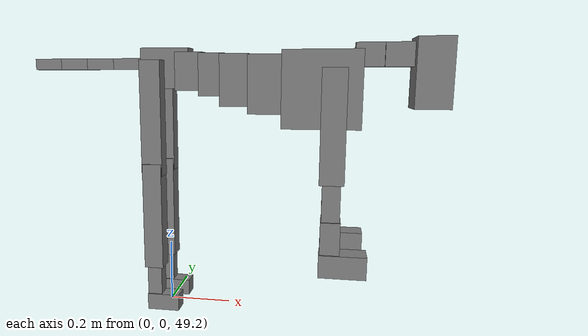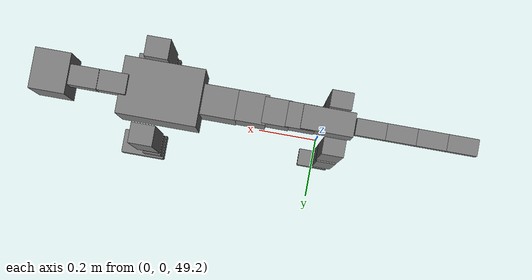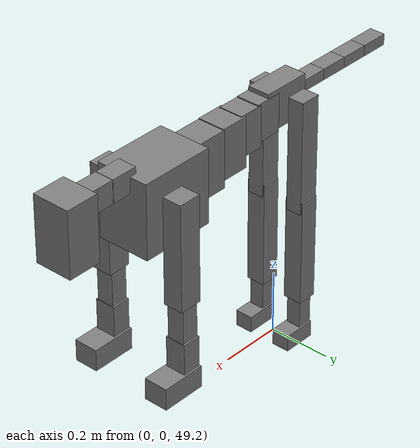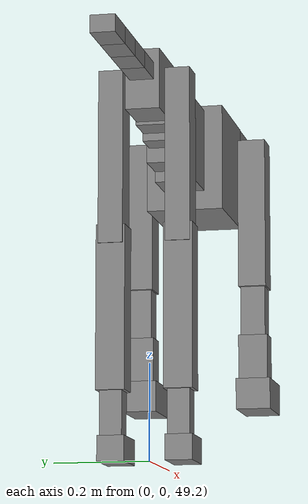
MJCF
<mujoco model="dog">

    <default>
        <joint armature="0.02" stiffness="1" damping="0.2" limited="true"/>
        <geom condim="3" friction="1 0.05 0.05" margin="0.01"/>
        <motor ctrllimited="true" ctrlrange="-1.0 1.0" forcelimited="true" gear="50"/>
    </default>

    <compiler inertiafromgeom="true" angle="radian"/>

    <option timestep="0.016" iterations="50" tolerance="1e-10" solver="Newton" jacobian="dense" cone="pyramidal"/>

    <size nconmax="20000" njmax="60000" nstack="5000000"/>
    <visual>
        <map force="0.1" zfar="30"/>
        <rgba haze="0.15 0.25 0.35 1"/>
        <quality shadowsize="2048"/>
        <global offwidth="800" offheight="800"/>
    </visual>

    <asset>
        <texture type="skybox" builtin="gradient" rgb1="0.3 0.5 0.7" rgb2="0 0 0" width="512" height="512"/>
        <texture name="texplane" type="2d" builtin="checker" rgb1=".2 .3 .4" rgb2=".1 0.15 0.2" width="512" height="512"
                 mark="cross" markrgb=".8 .8 .8"/>
        <texture name="texgeom" type="cube" builtin="flat" mark="cross" width="127" height="1278" rgb1="0.8 0.6 0.4"
                 rgb2="0.8 0.6 0.4" markrgb="1 1 1" random="0.01"/>

        <material name="matplane" reflectance="0.3" texture="texplane" texrepeat="1 1" texuniform="true"/>
        <material name="matgeom" texture="texgeom" texuniform="true" rgba="0.8 0.6 .4 1"/>
    </asset>

    <worldbody>
        <geom name="floor" pos="0 0 0" size="0 0 .25" type="plane" material="matplane" condim="3"/>

        <light directional="false" diffuse=".2 .2 .2" specular="0 0 0" pos="0 0 5" dir="0 0 -1" castshadow="false"/>
        <light mode="targetbodycom" target="torso" directional="false" diffuse=".8 .8 .8" specular="0.3 0.3 0.3"
               pos="0 0 4.0" dir="0 0 -1"/>

        <body name="root" pos="0 0 50">
            <freejoint name="root_1"/>
            <geom type="box" pos="0 0 -0.02" size="0.0774  0.0358  0.063" density="2030"/>

            <body name="spine1" pos="0.054 0 0">
                <joint name="spine1_y" axis="0 1 0" range="0 0.7" limited="true"/>
                <geom type="box" pos="0.02375 0 -0.03" size="0.04375  0.0375  0.05985" density="2030"/>

                <body name="spine2" pos="0.0612 0 0">
                    <joint name="spine2_y" axis="0 1 0" range="-0.15 0.15" limited="true"/>
                    <geom type="box" pos="0.03555  0  -0.04" size="0.04055  0.039  0.06615" density="2030"/>

                    <body name="spine3" pos="0.0730 0 0">
                        <joint name="spine3_y" axis="0 1 0" range="-0.15 0.15" limited="true"/>
                        <geom type="box" pos="0.03555  0  -0.057" size="0.04555  0.0445  0.081" density="2030"/>

                        <body name="spine4" pos="0.0780 0 0">
                            <joint name="spine4_y" axis="0 1 0" range="-0.15 0.15" limited="true"/>
                            <geom type="box" pos="0.05265  0  -0.07" size="0.05265  0.045  0.09135" density="2030"/>

                            <body name="torso" pos="0.1082 0 0">
                                <joint name="torso_y" axis="0 1 0" range="-0.15 0.15" limited="true"/>
                                <geom type="box" pos="0.11925  0  -0.085" size="0.11925  0.085  0.11745"
                                      density="2030"/>

                                <body name="neck1" pos="0.2160  0   0.0180">
                                    <joint name="neck1_y" axis="0 1 0" range="-1.2  -1" limited="true"/>
                                    <geom type="box" pos="0.0423  0  0" size="0.0423  0.03  0.036" density="2325"/>

                                    <body name="neck2" pos="0.0853  0  0">
                                        <joint name="neck2_y" axis="0 1 0" range="0.1  0" limited="true"/>
                                        <geom type="box" pos="0.0423  0  0" size="0.0423  0.03  0.036" density="2325"/>

                                        <body name="head" pos="0.0853  0  0">
                                            <joint name="head_y" axis="0 1 0" range="-0.3  -0.2" limited="true"/>
                                            <geom type="box" pos="0.0531  0  -0.055" size="0.0531  0.06  0.1044"
                                                  density="4030"/>

                                        </body>
                                    </body>
                                </body>

                                <body name="front_shoulder" pos="0.156  0   -0.0480">
                                    <joint name="front_shoulder_y" axis="0 1 0" range="-1 1.5" limited="true"/>
                                    <geom type="box" pos="0 0.13 -0.1414" size="0.0362  0.0309  0.1681" density="1158"/>
                                    <geom type="box" pos="0 -0.13 -0.1414" size="0.0362  0.0309  0.1681"
                                          density="1158"/>

                                    <body name="front_elbow" pos="0  0  -0.2828">
                                        <joint name="front_elbow_y" axis="0 1 0" range="-2 0" limited="true"/>
                                        <geom type="box" pos="0 0.13 -0.0748" size="0.0269  0.0275  0.0748"
                                              density="1081"/>
                                        <geom type="box" pos="0 -0.13 -0.0748" size="0.0269  0.0275  0.0748"
                                              density="1081"/>

                                        <body name="front_wrist" pos="0  0  -0.1497">
                                            <joint name="front_wrist_y" axis="0 1 0" range="-0.2 0" limited="true"/>
                                            <geom type="box" pos="0 0.13 -0.0501" size="0.0293  0.0326  0.0632"
                                                  density="1664"/>
                                            <geom type="box" pos="0 -0.13 -0.0501" size="0.0293  0.0326  0.0632"
                                                  density="1664"/>

                                            <body name="front_finger_end" pos="0  0  -0.1001">
                                                <joint name="front_finger_y" axis="0 1 0" range="-0.4 1"
                                                       limited="true"/>
                                                <geom type="box" pos="0.0384  0.13  -0.0195"
                                                      size="0.0703  0.0384  0.0345" density="1515"/>
                                                <geom type="box" pos="0.0384  -0.13  -0.0195"
                                                      size="0.0703  0.0384  0.0345" density="1515"/>

                                            </body>

                                        </body>
                                    </body>
                                </body>

                            </body>
                        </body>
                    </body>
                </body>
            </body>

            <body name="back_hip" pos="-0.03 0 -0.018">
                <joint name="back_hip_y" axis="0 1 0" range="-1.5 0.3" limited="true"/>
                <geom type="box" pos="0 0.07 -0.1583" size="0.0328  0.0257  0.1811" density="1154"/>
                <geom type="box" pos="0 -0.07 -0.1583" size="0.0328  0.0257  0.1811" density="1154"/>

                <body name="back_knee" pos="0  0  -0.3166">
                    <joint name="back_knee_y" axis="0 1 0" range="0 2.8" limited="true"/>
                    <geom type="box" pos="0 0.07 -0.1546" size="0.0304  0.0300  0.1702" density="1227"/>
                    <geom type="box" pos="0 -0.07 -0.1546" size="0.0304  0.0300  0.1702" density="1227"/>

                    <body name="back_ankle" pos="0  0  -0.3092">
                        <joint name="back_ankle_y" axis="0 1 0" range="-2.2 0" limited="true"/>
                        <geom type="box" pos="0 0.07 -0.0611" size="0.0231  0.0231  0.0724" density="1284"/>
                        <geom type="box" pos="0 -0.07 -0.0611" size="0.0231  0.0231  0.0724" density="1284"/>

                        <body name="back_toe_end" pos="0  0  -0.1223">
                            <joint name="back_toe_y" axis="0 1 0" range="-0.4 1" limited="true"/>
                            <geom type="box" pos="0.0282  0.07  -0.0113" size="0.0517  0.0282  0.0263" density="1515"/>
                            <geom type="box" pos="0.0282  -0.07  -0.0113" size="0.0517  0.0282  0.0263" density="1515"/>

                        </body>
                    </body>
                </body>
            </body>

            <body name="tail1" pos="-0.074 0 -0.006">
                <joint name="tail1_y" axis="0 1 0" range="-0.2 0.2" limited="true"/>
                <geom type="box" pos="-0.0536  0  0" size="0.045  0.025  0.0175" density="1587"/>

                <body name="tail2" pos="-0.09 0 0">
                    <joint name="tail2_y" axis="0 1 0" range="-0.2 0.2" limited="true"/>
                    <geom type="box" pos="-0.0536  0  0" size="0.045  0.025  0.0175" density="1587"/>

                    <body name="tail3" pos="-0.09 0 0">
                        <joint name="tail3_y" axis="0 1 0" range="-0.2 0.2" limited="true"/>
                        <geom type="box" pos="-0.0536  0  0" size="0.045  0.025  0.0175" density="1587"/>

                        <body name="tail4" pos="-0.09 0 0">
                            <joint name="tail4_y" axis="0 1 0" range="-0.2 0.2" limited="true"/>
                            <geom type="box" pos="-0.0536  0  0" size="0.045  0.025  0.0175" density="1587"/>

                        </body>
                    </body>
                </body>
            </body>
        </body>
    </worldbody>

    <actuator>
        <motor joint="spine1_y" forcerange="-150 150     "/>
        <motor joint="spine2_y" forcerange="-150 150     "/>
        <motor joint="spine3_y" forcerange="-150 150     "/>
        <motor joint="spine4_y" forcerange="-150 150     "/>
        <motor joint="torso_y" forcerange="-150 150     "/>
        <motor joint="neck1_y" forcerange="-100 100       "/>
        <motor joint="neck2_y" forcerange="-100 100       "/>
        <motor joint="head_y" forcerange="-150 150       "/>
        <motor joint="front_shoulder_y" forcerange="-177.51 128.75"/>
        <motor joint="front_elbow_y" forcerange="-162.25 137.65"/>
        <motor joint="front_wrist_y" forcerange="-131.63 129.22"/>
        <motor joint="front_finger_y" forcerange="-92.63 72.01"/>
        <motor joint="back_hip_y" forcerange="-290.44 252.82"/>
        <motor joint="back_knee_y" forcerange="-279.21 356.56"/>
        <motor joint="back_angle_y" forcerange="-110.56 158.97"/>
        <motor joint="back_toe_y" forcerange="-63.37 82.37"/>
        <motor joint="tail1_y" forcerange="-50 50     "/>
        <motor joint="tail2_y" forcerange="-50 50     "/>
        <motor joint="tail3_y" forcerange="-50 50     "/>
        <motor joint="tail4_y" forcerange="-50 50     "/>
    </actuator>
</mujoco>
